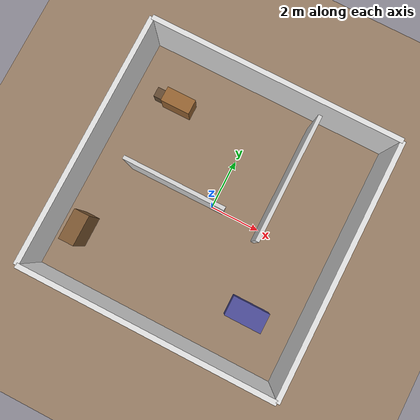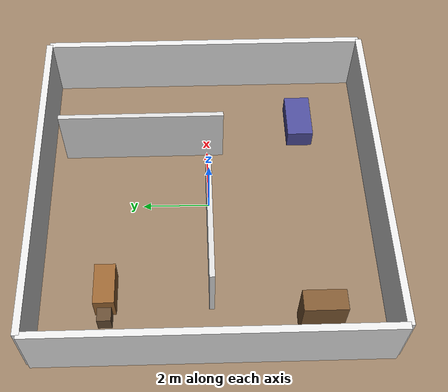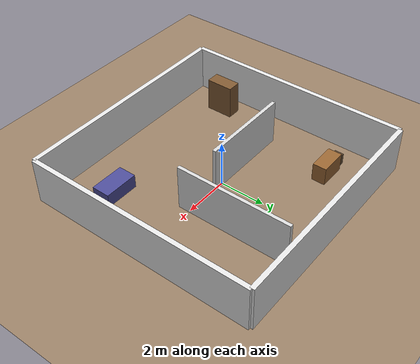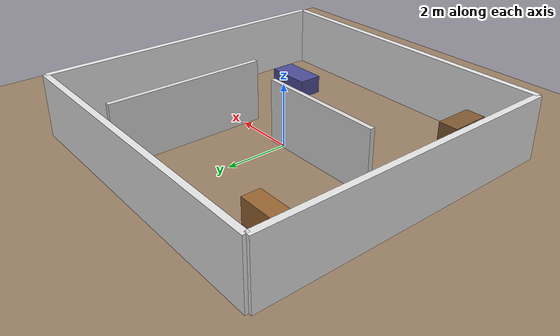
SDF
<?xml version="1.0" ?>
<sdf version="1.8">
  <world name="house_world">

    <!-- Fizik motoru -->
    <physics name="1ms" type="ignored">
      <max_step_size>0.001</max_step_size>
      <real_time_factor>1.0</real_time_factor>
    </physics>

    <!-- Eklentiler -->
    <plugin filename="gz-sim-physics-system" name="gz::sim::systems::Physics"/>
    <plugin filename="gz-sim-user-commands-system" name="gz::sim::systems::UserCommands"/>
    <plugin filename="gz-sim-scene-broadcaster-system" name="gz::sim::systems::SceneBroadcaster"/>
    <plugin filename="gz-sim-sensors-system" name="gz::sim::systems::Sensors">
      <render_engine>ogre2</render_engine>
    </plugin>
    <plugin filename="gz-sim-imu-system" name="gz::sim::systems::Imu"/>

    <!-- Aydınlatma -->
    <light type="directional" name="main_light">
      <cast_shadows>true</cast_shadows>
      <pose>0 0 10 0 0 0</pose>
      <diffuse>0.8 0.8 0.8 1</diffuse>
      <specular>0.2 0.2 0.2 1</specular>
      <direction>-0.5 0.1 -0.9</direction>
    </light>

    <!-- Zemin -->
    <model name="floor">
      <static>true</static>
      <link name="floor_link">
        <collision name="floor_collision">
          <geometry>
            <plane>
              <normal>0 0 1</normal>
              <size>20 20</size>
            </plane>
          </geometry>
        </collision>
        <visual name="floor_visual">
          <geometry>
            <plane>
              <normal>0 0 1</normal>
              <size>20 20</size>
            </plane>
          </geometry>
          <material>
            <ambient>0.6 0.5 0.4 1</ambient>
            <diffuse>0.6 0.5 0.4 1</diffuse>
          </material>
        </visual>
      </link>
    </model>

    <!-- ======== DUVARLAR ======== -->
    <!-- Dış duvar - Kuzey -->
    <model name="wall_north">
      <static>true</static>
      <pose>0 5 1 0 0 0</pose>
      <link name="link">
        <collision name="collision">
          <geometry><box><size>10 0.2 2</size></box></geometry>
        </collision>
        <visual name="visual">
          <geometry><box><size>10 0.2 2</size></box></geometry>
          <material>
            <ambient>0.9 0.9 0.9 1</ambient>
            <diffuse>0.9 0.9 0.9 1</diffuse>
          </material>
        </visual>
      </link>
    </model>

    <!-- Dış duvar - Güney -->
    <model name="wall_south">
      <static>true</static>
      <pose>0 -5 1 0 0 0</pose>
      <link name="link">
        <collision name="collision">
          <geometry><box><size>10 0.2 2</size></box></geometry>
        </collision>
        <visual name="visual">
          <geometry><box><size>10 0.2 2</size></box></geometry>
          <material>
            <ambient>0.9 0.9 0.9 1</ambient>
            <diffuse>0.9 0.9 0.9 1</diffuse>
          </material>
        </visual>
      </link>
    </model>

    <!-- Dış duvar - Doğu -->
    <model name="wall_east">
      <static>true</static>
      <pose>5 0 1 0 0 1.5708</pose>
      <link name="link">
        <collision name="collision">
          <geometry><box><size>10 0.2 2</size></box></geometry>
        </collision>
        <visual name="visual">
          <geometry><box><size>10 0.2 2</size></box></geometry>
          <material>
            <ambient>0.9 0.9 0.9 1</ambient>
            <diffuse>0.9 0.9 0.9 1</diffuse>
          </material>
        </visual>
      </link>
    </model>

    <!-- Dış duvar - Batı -->
    <model name="wall_west">
      <static>true</static>
      <pose>-5 0 1 0 0 1.5708</pose>
      <link name="link">
        <collision name="collision">
          <geometry><box><size>10 0.2 2</size></box></geometry>
        </collision>
        <visual name="visual">
          <geometry><box><size>10 0.2 2</size></box></geometry>
          <material>
            <ambient>0.9 0.9 0.9 1</ambient>
            <diffuse>0.9 0.9 0.9 1</diffuse>
          </material>
        </visual>
      </link>
    </model>

    <!-- İç duvar - Yatay -->
    <model name="wall_inner_h">
      <static>true</static>
      <pose>-1.5 0 1 0 0 0</pose>
      <link name="link">
        <collision name="collision">
          <geometry><box><size>4 0.15 2</size></box></geometry>
        </collision>
        <visual name="visual">
          <geometry><box><size>4 0.15 2</size></box></geometry>
          <material>
            <ambient>0.85 0.85 0.85 1</ambient>
            <diffuse>0.85 0.85 0.85 1</diffuse>
          </material>
        </visual>
      </link>
    </model>

    <!-- İç duvar - Dikey -->
    <model name="wall_inner_v">
      <static>true</static>
      <pose>2 2 1 0 0 1.5708</pose>
      <link name="link">
        <collision name="collision">
          <geometry><box><size>5 0.15 2</size></box></geometry>
        </collision>
        <visual name="visual">
          <geometry><box><size>5 0.15 2</size></box></geometry>
          <material>
            <ambient>0.85 0.85 0.85 1</ambient>
            <diffuse>0.85 0.85 0.85 1</diffuse>
          </material>
        </visual>
      </link>
    </model>

    <!-- ======== MOBİLYALAR ======== -->
    <!-- Masa -->
    <model name="table">
      <static>true</static>
      <pose>-3 3 0.4 0 0 0</pose>
      <link name="link">
        <collision name="collision">
          <geometry><box><size>1.2 0.6 0.8</size></box></geometry>
        </collision>
        <visual name="visual">
          <geometry><box><size>1.2 0.6 0.8</size></box></geometry>
          <material>
            <ambient>0.6 0.4 0.2 1</ambient>
            <diffuse>0.6 0.4 0.2 1</diffuse>
          </material>
        </visual>
      </link>
    </model>

    <!-- Sandalye -->
    <model name="chair">
      <static>true</static>
      <pose>-3.8 3 0.25 0 0 0</pose>
      <link name="link">
        <collision name="collision">
          <geometry><box><size>0.4 0.4 0.5</size></box></geometry>
        </collision>
        <visual name="visual">
          <geometry><box><size>0.4 0.4 0.5</size></box></geometry>
          <material>
            <ambient>0.4 0.3 0.2 1</ambient>
            <diffuse>0.4 0.3 0.2 1</diffuse>
          </material>
        </visual>
      </link>
    </model>

    <!-- Koltuk -->
    <model name="sofa">
      <static>true</static>
      <pose>3 -3 0.3 0 0 0</pose>
      <link name="link">
        <collision name="collision">
          <geometry><box><size>1.5 0.8 0.6</size></box></geometry>
        </collision>
        <visual name="visual">
          <geometry><box><size>1.5 0.8 0.6</size></box></geometry>
          <material>
            <ambient>0.3 0.3 0.6 1</ambient>
            <diffuse>0.3 0.3 0.6 1</diffuse>
          </material>
        </visual>
      </link>
    </model>

    <!-- Dolap -->
    <model name="cabinet">
      <static>true</static>
      <pose>-4 -3 0.75 0 0 0</pose>
      <link name="link">
        <collision name="collision">
          <geometry><box><size>0.6 1.2 1.5</size></box></geometry>
        </collision>
        <visual name="visual">
          <geometry><box><size>0.6 1.2 1.5</size></box></geometry>
          <material>
            <ambient>0.5 0.35 0.2 1</ambient>
            <diffuse>0.5 0.35 0.2 1</diffuse>
          </material>
        </visual>
      </link>
    </model>

  </world>
</sdf>
